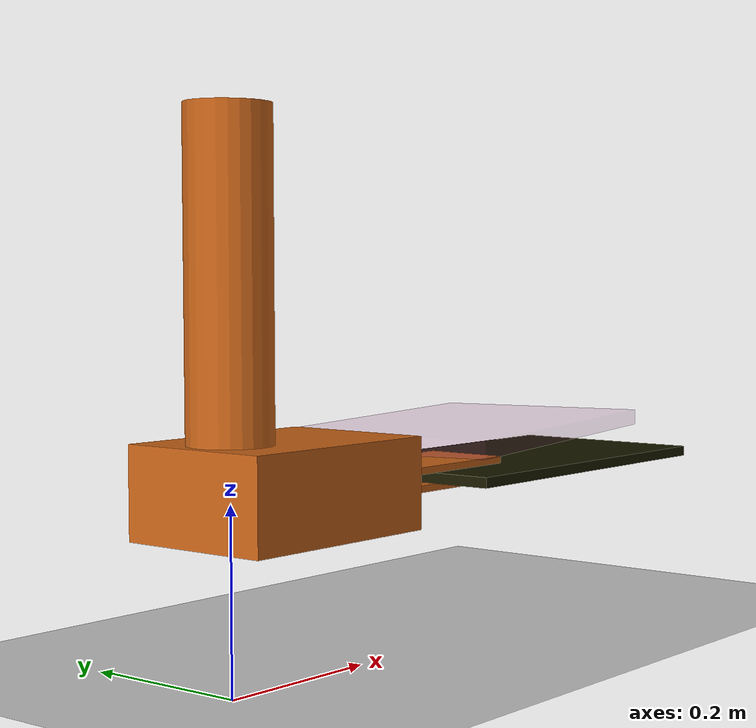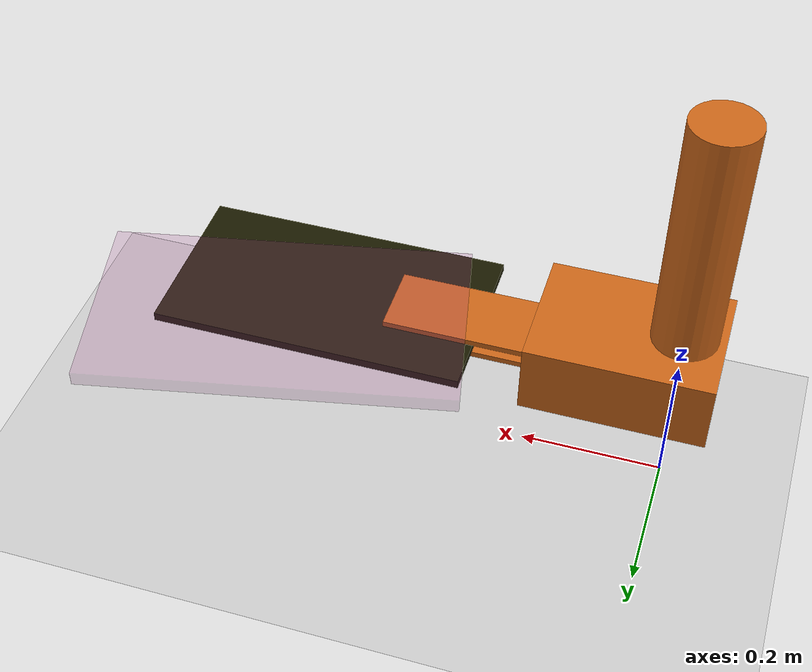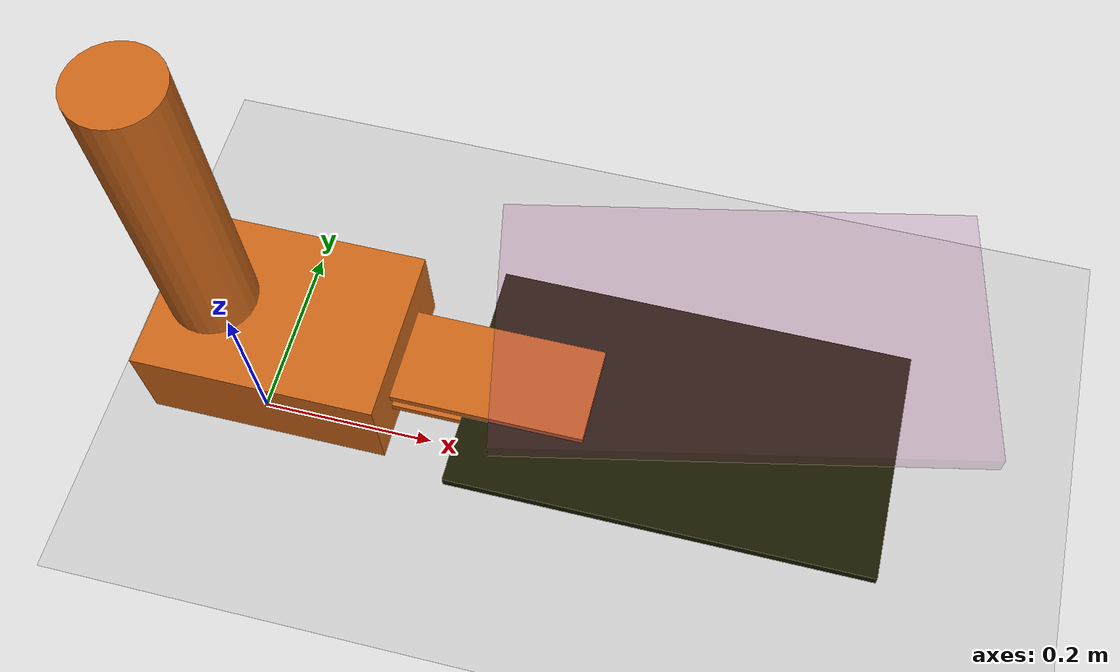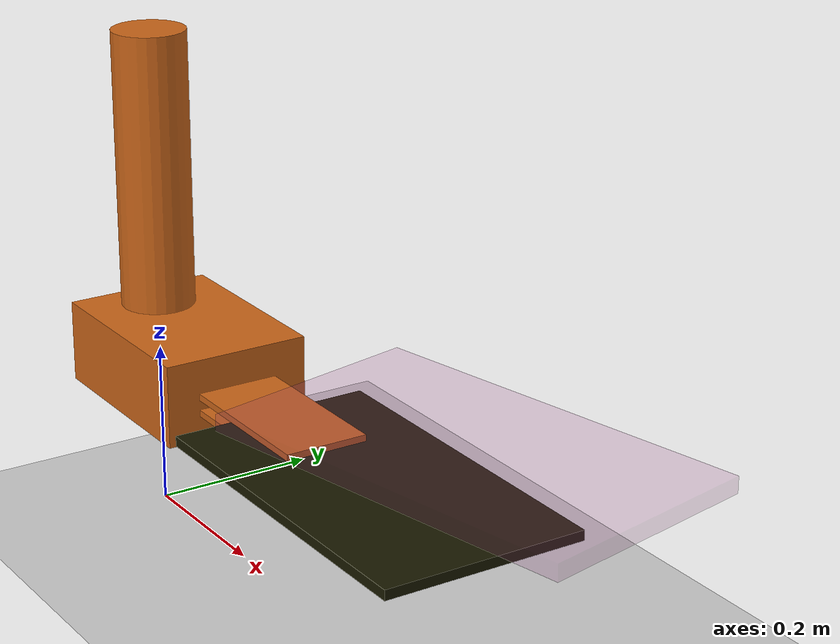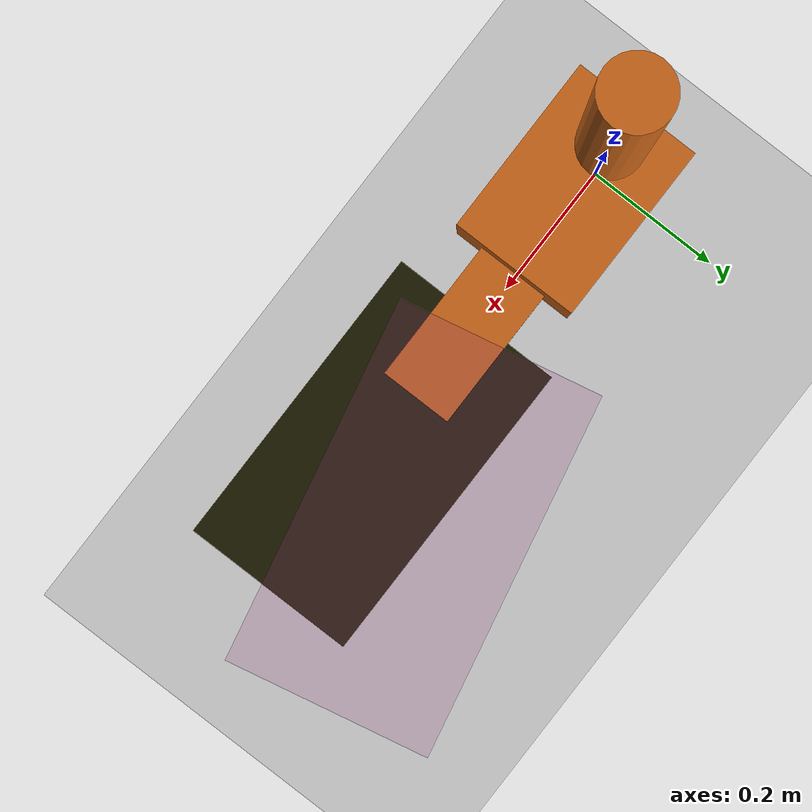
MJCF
<mujoco model="arm_claw (v1.31)">
	<compiler 	inertiafromgeom="true"
				angle="radian"/>

	<size 	nuser_jnt="1"
			nuser_geom="1"/>

	<option	timestep="0.002"
			gravity="0 0 -9.8"
			viscosity="0"
			iterations="20"/>

	<asset>
		<material name="MatGnd" specular=".3" shininess=".0" reflectance="0.0" rgba=".1 .7 .1 1"/>
	</asset>

	<default>
		<joint limited="true" damping="1" stiffness="0" armature=".1" user="0"/>
		<geom solref="0.008 1" solimp="0.95 0.95 0.01" margin="0.001" user="0"/>
		<motor ctrllimited="true" ctrlrange="-1 1"/>
		<position ctrllimited="true"/>

		<default class='0'>
			<geom friction="0.55 0.002 0.001" rgba=".8 .4 .1 1" contype="1" conaffinity="0" condim="4"/>
		</default>

		<default class='1'>
			<geom friction="0.6 0.002 0.001" rgba=".8 .4 .1 1" contype="1" conaffinity="0" condim="4"/>
		</default>

		<default class='arm'>
			<joint damping="5"/>
		</default>
	</default>

	<worldbody>
		<light directional="true" cutoff="40" exponent="10" diffuse=".4 .4 .4" specular=".5 .5 .5" pos="0 0 1.5" dir="0 0 -1"/>
		<geom name="tableTop" material="MatGnd" type="plane" pos="0.15 0 0" size="1.9 2.9 1.2" rgba="0.8 0.8 0.8 1" contype="1" conaffinity="1"/>

		<!--  ================= ARM MASTER ================= /-->
		<body name="upperarm" pos="0 0 0.6">
			<geom class="0" type="cylinder" fromto="0 0 0 0 0 -0.345" size="0.045"/>
			<joint class='arm' name="s_rotation" type="hinge" pos="0 0 0" axis="0 0 1" range="-0.698132 0.698132" user="003"/>

			<!--  ================= ARM ================= /-->
			<body name="forearm" pos="0.07 0 -0.390">
				<geom class="0" type="box"  size="0.125 .09 .05"/>

				<!--  ================= Gripper Master ================= /-->
				<body name="gripperMaster" pos="0.325 0 0.045">

					<!--  ================= UPPER GRIPPER ================= /-->
					<body name="gripper1" pos="-0.1 0.0 -0.04">
						<geom class="0" type="box" size="0.1 0.05 0.004"  rgba=".8 .4 .1 1"/>
						<joint class='arm' name="gripper" type="slide" pos="0 0 0" axis="0 0 1" range="-0.2 0.003" user="0035"/>
					</body>
					<!--  ================= LOWER GRIPPER ================= /-->
					<body name="gripper2" pos="-0.1 0.0 -0.06">
						<geom class="0" type="box" size="0.1 0.05 0.004" rgba=".8 .4 .1 1" contype="5"/>
					</body>

						<!--  ================= REFERENCE OBJECT ================= /-->
						<body name="ref_object" pos="0.13 0.098 -0.02">
							<geom class="1" type="box" size="0.25 .14 .01" rgba="0.6 0.2 0.5 0.1" conaffinity="0" contype="0" mass="0" euler="0 0 0.209"/>
						</body>

				</body>

			</body>

		</body>

		<!--  ================= OBJECT ================= 2 / -->
		<body name="object" pos="0.485 0 0.205">
			<geom class="1" type="box" size="0.215 .12 .006" rgba="0.1 0.1 0.0 1" conaffinity="1"/>
			<joint name="fr" type="free" limited='false' damping="0" armature="0" user="010"/>

		</body>

	</worldbody>

	<actuator>

		<!--  ================= O range de rotação é de mais ou menos 60° ================= / -->
		<motor joint="s_rotation" gear="20" />
		<position joint='gripper' 	name='Gripper' 	kp="100" ctrlrange='-0.2 0.003'/>
	</actuator>

</mujoco>
